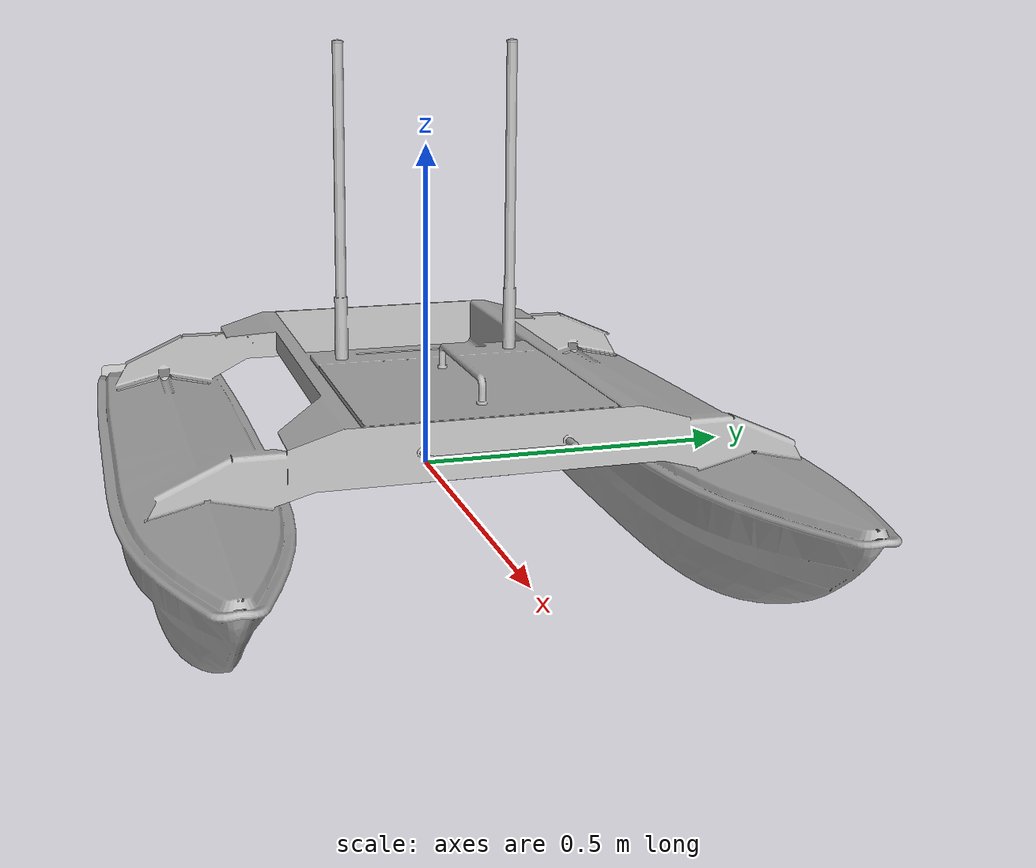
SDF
<?xml version='1.0'?>
<sdf version='1.6'>

  <!-- from heron/heron_description/urdf/heron.urdf.xacro -->
  <model name='heron_base'>
    <pose>0 0 0.1 0 0 0</pose>
    <static>false</static>

    <plugin name="hydrodynamics" filename="libHydrodynamicsPlugin.so">
      <!-- Wave Model -->
      <wave_model>ocean_waves</wave_model>

      <!-- Hydrodynamics -->
      <damping_on>true</damping_on>
      <viscous_drag_on>true</viscous_drag_on>
      <pressure_drag_on>true</pressure_drag_on>

      <!-- Markers -->
      <markers>
        <update_rate>30</update_rate>
        <water_patch>false</water_patch>
        <waterline>false</waterline>
        <underwater_surface>false</underwater_surface>
      </markers>
    </plugin>

    <link name="base_link">
      <visual name="base_visual">
        <geometry>
          <mesh>
            <uri>model://heron_base/meshes/heron_base.stl</uri>
          </mesh>
        </geometry>
    </visual>
      <collision name="base_collision">
        <geometry>
          <mesh>
            <uri>model://heron_base/meshes/heron_base_collision.stl</uri>
          </mesh>
        </geometry>
      </collision>
      <inertial>
        <pose>0 0 0 0 0 0</pose>
        <mass>28</mass>
        <inertia>
          <ixx>2.48</ixx>
          <ixy>0</ixy>
          <iyy>4.49</iyy>
          <iyz>0</iyz>
          <izz>6.49</izz>
        </inertia>
      </inertial>
    </link>
  </model>
</sdf>
